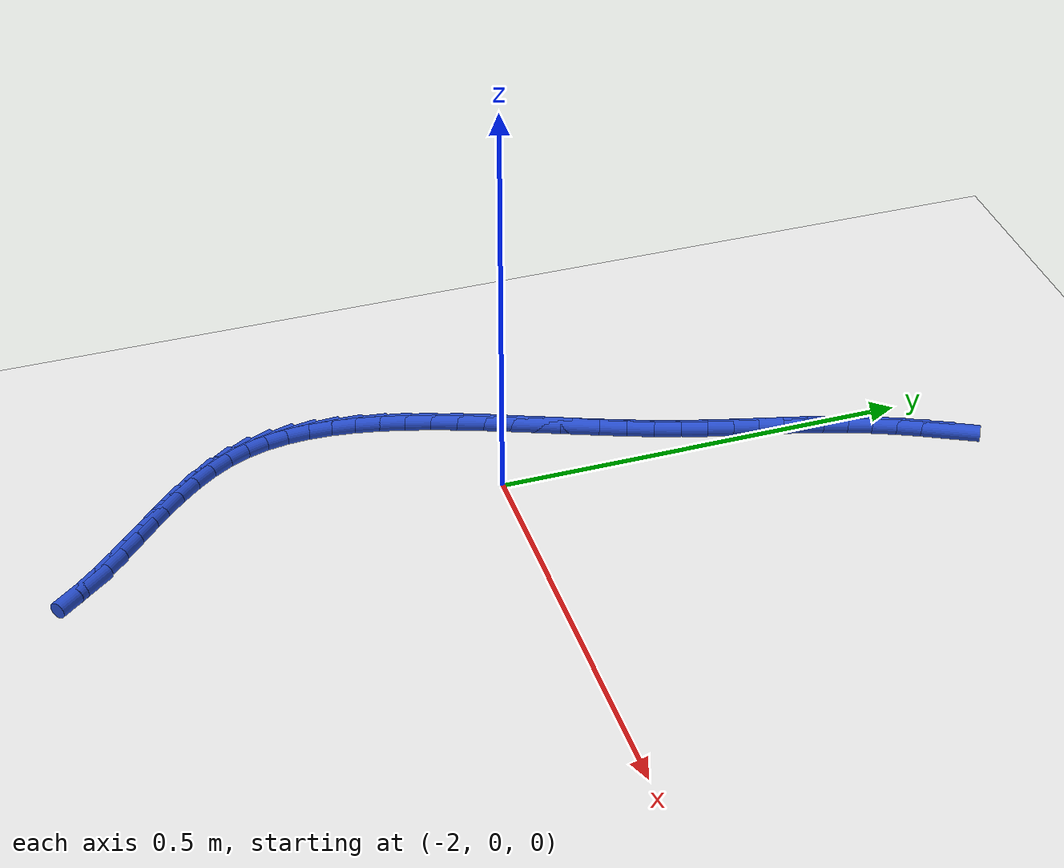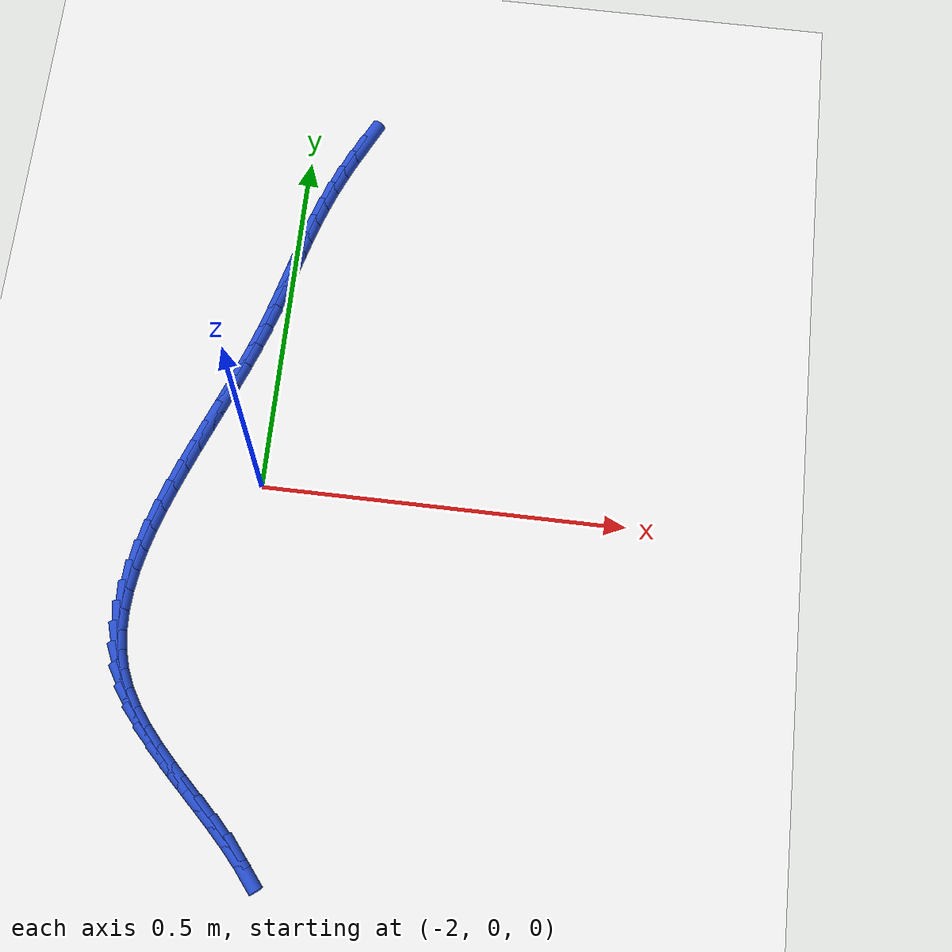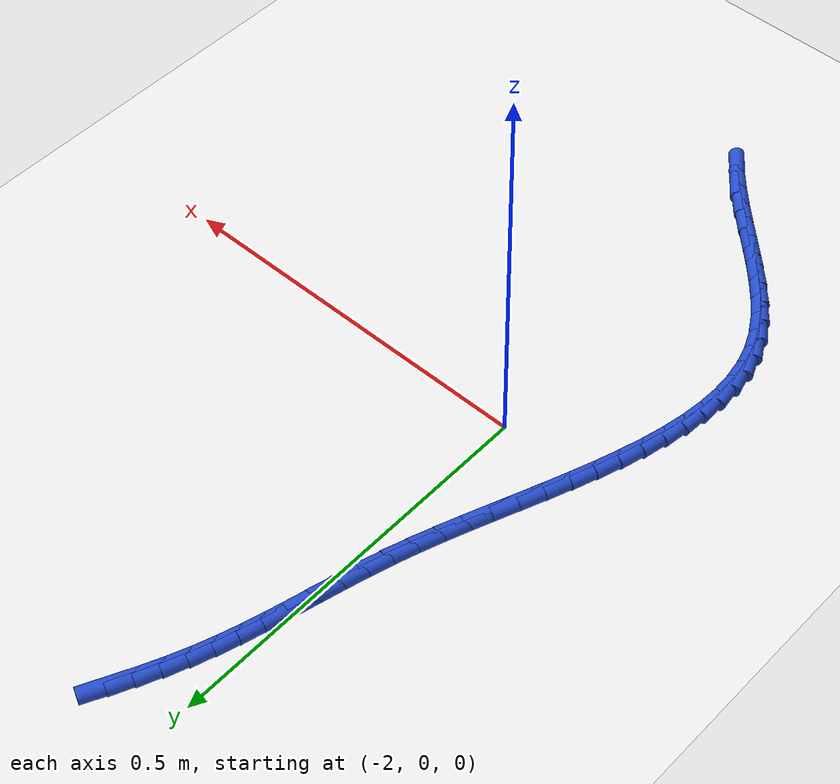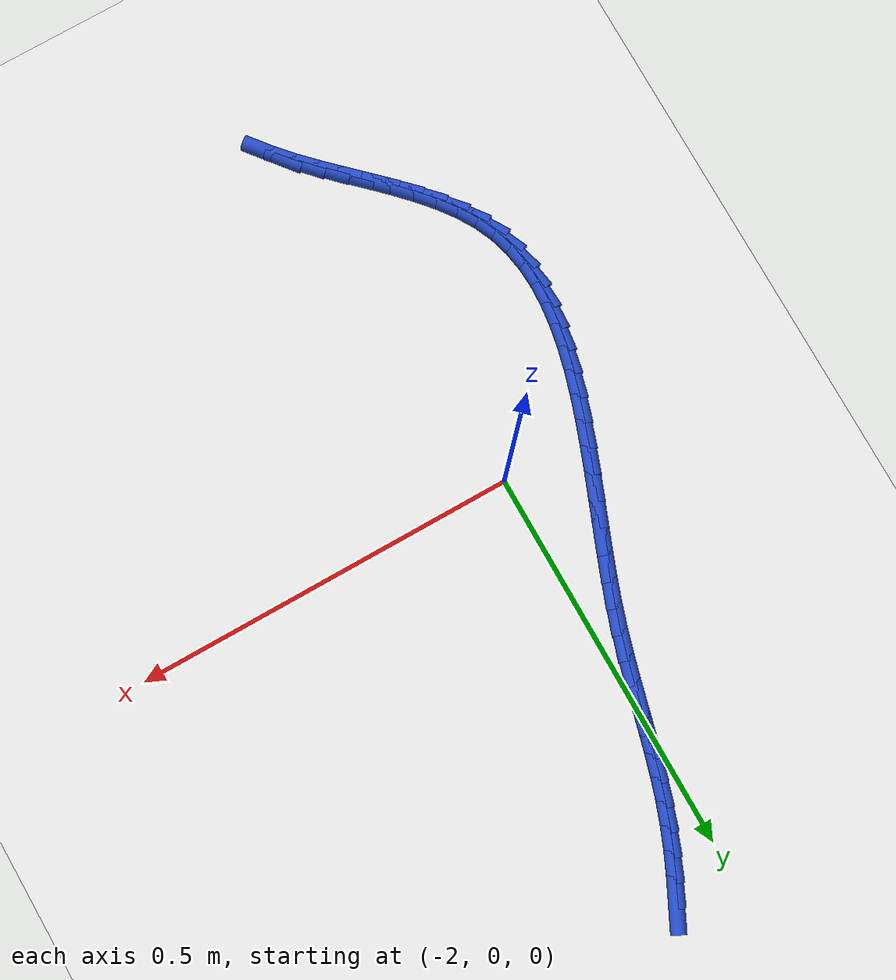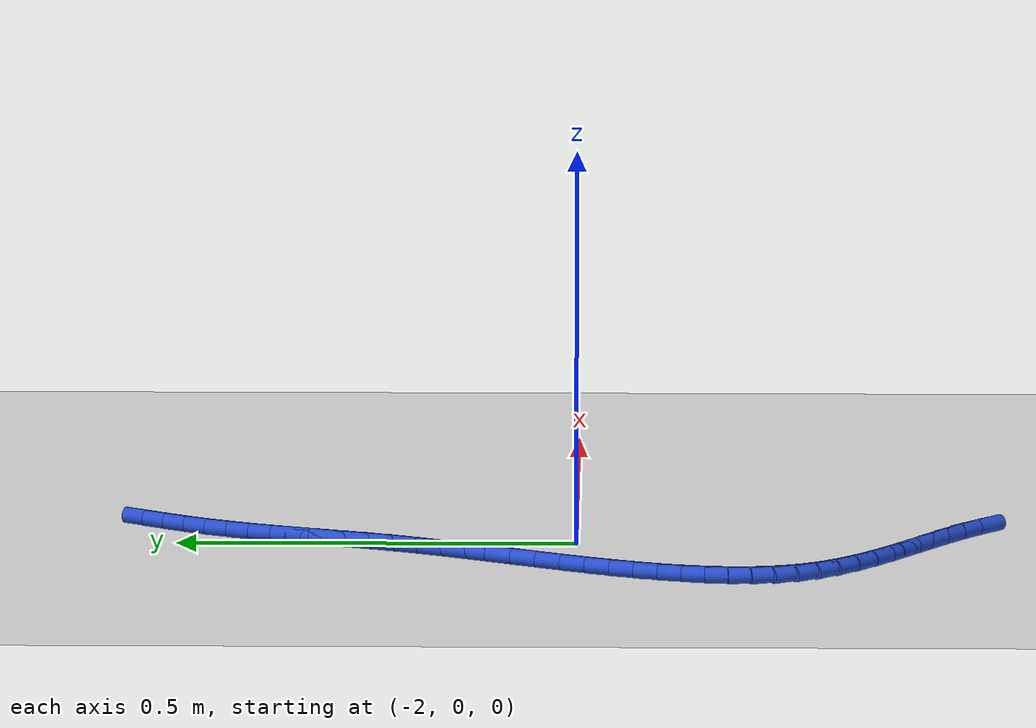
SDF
<sdf version="1.6">
 <world name="default">
  <model name="ground_plane">
   <static>1</static>
   <link name="link">
    <collision name="collision">
     <geometry><plane><normal>0 0 1</normal><size>100 100</size></plane></geometry>
     <surface><friction><ode><mu>100</mu><mu2>50</mu2></ode></friction></surface>
    </collision>
    <visual name="visual">
     <cast_shadows>0</cast_shadows>
     <geometry><plane><normal>0 0 1</normal><size>100 100</size></plane></geometry>
     <material>
      <script><uri>file://media/materials/scripts/gazebo.material</uri><name>Gazebo/WhiteGlow</name></script>
     </material>
    </visual>
   </link>
  </model>
  <model name="line">
   <link name="link_95">
    <pose>-1.9264585725661432 0.5358245085037695 0.01 0 1.57 1.1097923839732724</pose>
    <collision name="collision">
     <geometry><cylinder><radius>0.01</radius><length>0.08</length></cylinder></geometry>
    </collision>
    <visual name="visual">
     <material>
      <script><name>Gazebo/Blue</name><uri>file://media/materials/scripts/gazebo.material</uri></script>
     </material>
     <geometry><cylinder><radius>0.01</radius><length>0.08</length></cylinder></geometry>
    </visual>
   </link>
   <link name="link_96">
    <pose>-1.9397748339009064 0.5090150310546474 0.01 0 1.57 1.1432588997911424</pose>
    <collision name="collision">
     <geometry><cylinder><radius>0.01</radius><length>0.08</length></cylinder></geometry>
    </collision>
    <visual name="visual">
     <material>
      <script><name>Gazebo/Blue</name><uri>file://media/materials/scripts/gazebo.material</uri></script>
     </material>
     <geometry><cylinder><radius>0.01</radius><length>0.08</length></cylinder></geometry>
    </visual>
   </link>
   <link name="link_97">
    <pose>-1.9521064032205446 0.48195097777979706 0.01 0 1.57 1.1797853155643971</pose>
    <collision name="collision">
     <geometry><cylinder><radius>0.01</radius><length>0.08</length></cylinder></geometry>
    </collision>
    <visual name="visual">
     <material>
      <script><name>Gazebo/Blue</name><uri>file://media/materials/scripts/gazebo.material</uri></script>
     </material>
     <geometry><cylinder><radius>0.01</radius><length>0.08</length></cylinder></geometry>
    </visual>
   </link>
   <link name="link_98">
    <pose>-1.9633698662307446 0.45462820878678806 0.01 0 1.57 1.2194063952670964</pose>
    <collision name="collision">
     <geometry><cylinder><radius>0.01</radius><length>0.08</length></cylinder></geometry>
    </collision>
    <visual name="visual">
     <material>
      <script><name>Gazebo/Blue</name><uri>file://media/materials/scripts/gazebo.material</uri></script>
     </material>
     <geometry><cylinder><radius>0.01</radius><length>0.08</length></cylinder></geometry>
    </visual>
   </link>
   <link name="link_99">
    <pose>-1.9734828875390578 0.4270425592559199 0.01 0 1.57 1.258067836193791</pose>
    <collision name="collision">
     <geometry><cylinder><radius>0.01</radius><length>0.08</length></cylinder></geometry>
    </collision>
    <visual name="visual">
     <material>
      <script><name>Gazebo/Blue</name><uri>file://media/materials/scripts/gazebo.material</uri></script>
     </material>
     <geometry><cylinder><radius>0.01</radius><length>0.08</length></cylinder></geometry>
    </visual>
   </link>
   <link name="link_100">
    <pose>-1.9824896844496198 0.3991869404563042 0.01 0 1.57 1.2876099407139991</pose>
    <collision name="collision">
     <geometry><cylinder><radius>0.01</radius><length>0.08</length></cylinder></geometry>
    </collision>
    <visual name="visual">
     <material>
      <script><name>Gazebo/Blue</name><uri>file://media/materials/scripts/gazebo.material</uri></script>
     </material>
     <geometry><cylinder><radius>0.01</radius><length>0.08</length></cylinder></geometry>
    </visual>
   </link>
   <link name="link_101">
    <pose>-1.9906781387846422 0.37104863395946314 0.01 0 1.57 1.3068085031165297</pose>
    <collision name="collision">
     <geometry><cylinder><radius>0.01</radius><length>0.08</length></cylinder></geometry>
    </collision>
    <visual name="visual">
     <material>
      <script><name>Gazebo/Blue</name><uri>file://media/materials/scripts/gazebo.material</uri></script>
     </material>
     <geometry><cylinder><radius>0.01</radius><length>0.08</length></cylinder></geometry>
    </visual>
   </link>
   <link name="link_102">
    <pose>-1.9983638342923518 0.34261428130337146 0.01 0 1.57 1.3156090838781567</pose>
    <collision name="collision">
     <geometry><cylinder><radius>0.01</radius><length>0.08</length></cylinder></geometry>
    </collision>
    <visual name="visual">
     <material>
      <script><name>Gazebo/Blue</name><uri>file://media/materials/scripts/gazebo.material</uri></script>
     </material>
     <geometry><cylinder><radius>0.01</radius><length>0.08</length></cylinder></geometry>
    </visual>
   </link>
   <link name="link_103">
    <pose>-2.005862354720979 0.3138705240260032 0.01 0 1.57 1.3141856028820014</pose>
    <collision name="collision">
     <geometry><cylinder><radius>0.01</radius><length>0.08</length></cylinder></geometry>
    </collision>
    <visual name="visual">
     <material>
      <script><name>Gazebo/Blue</name><uri>file://media/materials/scripts/gazebo.material</uri></script>
     </material>
     <geometry><cylinder><radius>0.01</radius><length>0.08</length></cylinder></geometry>
    </visual>
   </link>
   <link name="link_104">
    <pose>-2.013489283818752 0.28480400366533337 0.01 0 1.57 1.3028983006932744</pose>
    <collision name="collision">
     <geometry><cylinder><radius>0.01</radius><length>0.08</length></cylinder></geometry>
    </collision>
    <visual name="visual">
     <material>
      <script><name>Gazebo/Blue</name><uri>file://media/materials/scripts/gazebo.material</uri></script>
     </material>
     <geometry><cylinder><radius>0.01</radius><length>0.08</length></cylinder></geometry>
    </visual>
   </link>
   <link name="link_105">
    <pose>-2.0215602053339006 0.25540136175933575 0.01 0 1.57 1.2822757942679142</pose>
    <collision name="collision">
     <geometry><cylinder><radius>0.01</radius><length>0.08</length></cylinder></geometry>
    </collision>
    <visual name="visual">
     <material>
      <script><name>Gazebo/Blue</name><uri>file://media/materials/scripts/gazebo.material</uri></script>
     </material>
     <geometry><cylinder><radius>0.01</radius><length>0.08</length></cylinder></geometry>
    </visual>
   </link>
   <link name="link_106">
    <pose>-2.0303907030146515 0.22564923984598526 0.01 0 1.57 1.2536320740986076</pose>
    <collision name="collision">
     <geometry><cylinder><radius>0.01</radius><length>0.08</length></cylinder></geometry>
    </collision>
    <visual name="visual">
     <material>
      <script><name>Gazebo/Blue</name><uri>file://media/materials/scripts/gazebo.material</uri></script>
     </material>
     <geometry><cylinder><radius>0.01</radius><length>0.08</length></cylinder></geometry>
    </visual>
   </link>
   <link name="link_107">
    <pose>-2.0402746876266886 0.19553764933546988 0.01 0 1.57 1.2265916299990405</pose>
    <collision name="collision">
     <geometry><cylinder><radius>0.01</radius><length>0.08</length></cylinder></geometry>
    </collision>
    <visual name="visual">
     <material>
      <script><name>Gazebo/Blue</name><uri>file://media/materials/scripts/gazebo.material</uri></script>
     </material>
     <geometry><cylinder><radius>0.01</radius><length>0.08</length></cylinder></geometry>
    </visual>
   </link>
   <link name="link_108">
    <pose>-2.0511833888920648 0.16510677442247584 0.01 0 1.57 1.2075950107326288</pose>
    <collision name="collision">
     <geometry><cylinder><radius>0.01</radius><length>0.08</length></cylinder></geometry>
    </collision>
    <visual name="visual">
     <material>
      <script><name>Gazebo/Blue</name><uri>file://media/materials/scripts/gazebo.material</uri></script>
     </material>
     <geometry><cylinder><radius>0.01</radius><length>0.08</length></cylinder></geometry>
    </visual>
   </link>
   <link name="link_109">
    <pose>-2.0628404573952808 0.13443529469818197 0.01 0 1.57 1.1961809921834046</pose>
    <collision name="collision">
     <geometry><cylinder><radius>0.01</radius><length>0.08</length></cylinder></geometry>
    </collision>
    <visual name="visual">
     <material>
      <script><name>Gazebo/Blue</name><uri>file://media/materials/scripts/gazebo.material</uri></script>
     </material>
     <geometry><cylinder><radius>0.01</radius><length>0.08</length></cylinder></geometry>
    </visual>
   </link>
   <link name="link_110">
    <pose>-2.0749632223885035 0.10360287264027634 0.01 0 1.57 1.1919555916238058</pose>
    <collision name="collision">
     <geometry><cylinder><radius>0.01</radius><length>0.08</length></cylinder></geometry>
    </collision>
    <visual name="visual">
     <material>
      <script><name>Gazebo/Blue</name><uri>file://media/materials/scripts/gazebo.material</uri></script>
     </material>
     <geometry><cylinder><radius>0.01</radius><length>0.08</length></cylinder></geometry>
    </visual>
   </link>
   <link name="link_111">
    <pose>-2.0872690131238985 0.07268917072644872 0.01 0 1.57 1.1947589679520159</pose>
    <collision name="collision">
     <geometry><cylinder><radius>0.01</radius><length>0.08</length></cylinder></geometry>
    </collision>
    <visual name="visual">
     <material>
      <script><name>Gazebo/Blue</name><uri>file://media/materials/scripts/gazebo.material</uri></script>
     </material>
     <geometry><cylinder><radius>0.01</radius><length>0.08</length></cylinder></geometry>
    </visual>
   </link>
   <link name="link_112">
    <pose>-2.099475158853632 0.04177385143438713 0.01 0 1.57 1.2046585304836177</pose>
    <collision name="collision">
     <geometry><cylinder><radius>0.01</radius><length>0.08</length></cylinder></geometry>
    </collision>
    <visual name="visual">
     <material>
      <script><name>Gazebo/Blue</name><uri>file://media/materials/scripts/gazebo.material</uri></script>
     </material>
     <geometry><cylinder><radius>0.01</radius><length>0.08</length></cylinder></geometry>
    </visual>
   </link>
   <link name="link_113">
    <pose>-2.1112989888298688 0.010936577241781266 0.01 0 1.57 1.2219493981736727</pose>
    <collision name="collision">
     <geometry><cylinder><radius>0.01</radius><length>0.08</length></cylinder></geometry>
    </collision>
    <visual name="visual">
     <material>
      <script><name>Gazebo/Blue</name><uri>file://media/materials/scripts/gazebo.material</uri></script>
     </material>
     <geometry><cylinder><radius>0.01</radius><length>0.08</length></cylinder></geometry>
    </visual>
   </link>
   <link name="link_114">
    <pose>-2.1224578323047756 -0.019742989373680873 0.01 0 1.57 1.247161134997798</pose>
    <collision name="collision">
     <geometry><cylinder><radius>0.01</radius><length>0.08</length></cylinder></geometry>
    </collision>
    <visual name="visual">
     <material>
      <script><name>Gazebo/Blue</name><uri>file://media/materials/scripts/gazebo.material</uri></script>
     </material>
     <geometry><cylinder><radius>0.01</radius><length>0.08</length></cylinder></geometry>
    </visual>
   </link>
   <link name="link_115">
    <pose>-2.132669018530518 -0.05018518593430951 0.01 0 1.57 1.2810668913233694</pose>
    <collision name="collision">
     <geometry><cylinder><radius>0.01</radius><length>0.08</length></cylinder></geometry>
    </collision>
    <visual name="visual">
     <material>
      <script><name>Gazebo/Blue</name><uri>file://media/materials/scripts/gazebo.material</uri></script>
     </material>
     <geometry><cylinder><radius>0.01</radius><length>0.08</length></cylinder></geometry>
    </visual>
   </link>
   <link name="link_116">
    <pose>-2.1416498767592604 -0.08031034996241625 0.01 0 1.57 1.3246864174786368</pose>
    <collision name="collision">
     <geometry><cylinder><radius>0.01</radius><length>0.08</length></cylinder></geometry>
    </collision>
    <visual name="visual">
     <material>
      <script><name>Gazebo/Blue</name><uri>file://media/materials/scripts/gazebo.material</uri></script>
     </material>
     <geometry><cylinder><radius>0.01</radius><length>0.08</length></cylinder></geometry>
    </visual>
   </link>
   <link name="link_117">
    <pose>-2.1491177362431704 -0.11003881898031298 0.01 0 1.57 1.3792661999603433</pose>
    <collision name="collision">
     <geometry><cylinder><radius>0.01</radius><length>0.08</length></cylinder></geometry>
    </collision>
    <visual name="visual">
     <material>
      <script><name>Gazebo/Blue</name><uri>file://media/materials/scripts/gazebo.material</uri></script>
     </material>
     <geometry><cylinder><radius>0.01</radius><length>0.08</length></cylinder></geometry>
    </visual>
   </link>
   <link name="link_118">
    <pose>-2.1547899262344132 -0.13929093051030927 0.01 0 1.57 1.4462067043760853</pose>
    <collision name="collision">
     <geometry><cylinder><radius>0.01</radius><length>0.08</length></cylinder></geometry>
    </collision>
    <visual name="visual">
     <material>
      <script><name>Gazebo/Blue</name><uri>file://media/materials/scripts/gazebo.material</uri></script>
     </material>
     <geometry><cylinder><radius>0.01</radius><length>0.08</length></cylinder></geometry>
    </visual>
   </link>
   <link name="link_119">
    <pose>-2.1583837759851545 -0.16798702207471697 0.01 0 1.57 1.5268893963776622</pose>
    <collision name="collision">
     <geometry><cylinder><radius>0.01</radius><length>0.08</length></cylinder></geometry>
    </collision>
    <visual name="visual">
     <material>
      <script><name>Gazebo/Blue</name><uri>file://media/materials/scripts/gazebo.material</uri></script>
     </material>
     <geometry><cylinder><radius>0.01</radius><length>0.08</length></cylinder></geometry>
    </visual>
   </link>
   <link name="link_120">
    <pose>-2.1596166147475593 -0.1960474311958473 0.01 0 1.57 -1.5192479707244286</pose>
    <collision name="collision">
     <geometry><cylinder><radius>0.01</radius><length>0.08</length></cylinder></geometry>
    </collision>
    <visual name="visual">
     <material>
      <script><name>Gazebo/Blue</name><uri>file://media/materials/scripts/gazebo.material</uri></script>
     </material>
     <geometry><cylinder><radius>0.01</radius><length>0.08</length></cylinder></geometry>
    </visual>
   </link>
   <link name="link_121">
    <pose>-2.1582057717737944 -0.2233924953960114 0.01 0 1.57 -1.4088674621820503</pose>
    <collision name="collision">
     <geometry><cylinder><radius>0.01</radius><length>0.08</length></cylinder></geometry>
    </collision>
    <visual name="visual">
     <material>
      <script><name>Gazebo/Blue</name><uri>file://media/materials/scripts/gazebo.material</uri></script>
     </material>
     <geometry><cylinder><radius>0.01</radius><length>0.08</length></cylinder></geometry>
    </visual>
   </link>
   <link name="link_122">
    <pose>-2.1538685763160252 -0.24994255219752093 0.01 0 1.57 -1.2849372394934582</pose>
    <collision name="collision">
     <geometry><cylinder><radius>0.01</radius><length>0.08</length></cylinder></geometry>
    </collision>
    <visual name="visual">
     <material>
      <script><name>Gazebo/Blue</name><uri>file://media/materials/scripts/gazebo.material</uri></script>
     </material>
     <geometry><cylinder><radius>0.01</radius><length>0.08</length></cylinder></geometry>
    </visual>
   </link>
   <link name="link_123">
    <pose>-2.1463223576264174 -0.27561793912268584 0.01 0 1.57 -1.1512333430492385</pose>
    <collision name="collision">
     <geometry><cylinder><radius>0.01</radius><length>0.08</length></cylinder></geometry>
    </collision>
    <visual name="visual">
     <material>
      <script><name>Gazebo/Blue</name><uri>file://media/materials/scripts/gazebo.material</uri></script>
     </material>
     <geometry><cylinder><radius>0.01</radius><length>0.08</length></cylinder></geometry>
    </visual>
   </link>
   <link name="link_124">
    <pose>-2.135294299936073 -0.3003418384279515 0.01 0 1.57 -1.026259693451715</pose>
    <collision name="collision">
     <geometry><cylinder><radius>0.01</radius><length>0.08</length></cylinder></geometry>
    </collision>
    <visual name="visual">
     <material>
      <script><name>Gazebo/Blue</name><uri>file://media/materials/scripts/gazebo.material</uri></script>
     </material>
     <geometry><cylinder><radius>0.01</radius><length>0.08</length></cylinder></geometry>
    </visual>
   </link>
   <link name="link_125">
    <pose>-2.1208796008446793 -0.32414366295615715 0.01 0 1.57 -0.9285984750349181</pose>
    <collision name="collision">
     <geometry><cylinder><radius>0.01</radius><length>0.08</length></cylinder></geometry>
    </collision>
    <visual name="visual">
     <material>
      <script><name>Gazebo/Blue</name><uri>file://media/materials/scripts/gazebo.material</uri></script>
     </material>
     <geometry><cylinder><radius>0.01</radius><length>0.08</length></cylinder></geometry>
    </visual>
   </link>
   <link name="link_126">
    <pose>-2.103642964279634 -0.3471883530520379 0.01 0 1.57 -0.8567852057747298</pose>
    <collision name="collision">
     <geometry><cylinder><radius>0.01</radius><length>0.08</length></cylinder></geometry>
    </collision>
    <visual name="visual">
     <material>
      <script><name>Gazebo/Blue</name><uri>file://media/materials/scripts/gazebo.material</uri></script>
     </material>
     <geometry><cylinder><radius>0.01</radius><length>0.08</length></cylinder></geometry>
    </visual>
   </link>
   <link name="link_127">
    <pose>-2.0841796259657057 -0.36964966235629737 0.01 0 1.57 -0.8075719500271227</pose>
    <collision name="collision">
     <geometry><cylinder><radius>0.01</radius><length>0.08</length></cylinder></geometry>
    </collision>
    <visual name="visual">
     <material>
      <script><name>Gazebo/Blue</name><uri>file://media/materials/scripts/gazebo.material</uri></script>
     </material>
     <geometry><cylinder><radius>0.01</radius><length>0.08</length></cylinder></geometry>
    </visual>
   </link>
   <link name="link_128">
    <pose>-2.063084821627662 -0.3917013445096405 0.01 0 1.57 -0.778225393643579</pose>
    <collision name="collision">
     <geometry><cylinder><radius>0.01</radius><length>0.08</length></cylinder></geometry>
    </collision>
    <visual name="visual">
     <material>
      <script><name>Gazebo/Blue</name><uri>file://media/materials/scripts/gazebo.material</uri></script>
     </material>
     <geometry><cylinder><radius>0.01</radius><length>0.08</length></cylinder></geometry>
    </visual>
   </link>
   <link name="link_129">
    <pose>-2.04095378699027 -0.41351715315277193 0.01 0 1.57 -0.7669382823421232</pose>
    <collision name="collision">
     <geometry><cylinder><radius>0.01</radius><length>0.08</length></cylinder></geometry>
    </collision>
    <visual name="visual">
     <material>
      <script><name>Gazebo/Blue</name><uri>file://media/materials/scripts/gazebo.material</uri></script>
     </material>
     <geometry><cylinder><radius>0.01</radius><length>0.08</length></cylinder></geometry>
    </visual>
   </link>
   <link name="link_130">
    <pose>-2.0183817577782985 -0.43527084192639653 0.01 0 1.57 -0.7729230493119708</pose>
    <collision name="collision">
     <geometry><cylinder><radius>0.01</radius><length>0.08</length></cylinder></geometry>
    </collision>
    <visual name="visual">
     <material>
      <script><name>Gazebo/Blue</name><uri>file://media/materials/scripts/gazebo.material</uri></script>
     </material>
     <geometry><cylinder><radius>0.01</radius><length>0.08</length></cylinder></geometry>
    </visual>
   </link>
   <link name="link_131">
    <pose>-1.9959639697165135 -0.457136164471219 0.01 0 1.57 -0.7964066083720689</pose>
    <collision name="collision">
     <geometry><cylinder><radius>0.01</radius><length>0.08</length></cylinder></geometry>
    </collision>
    <visual name="visual">
     <material>
      <script><name>Gazebo/Blue</name><uri>file://media/materials/scripts/gazebo.material</uri></script>
     </material>
     <geometry><cylinder><radius>0.01</radius><length>0.08</length></cylinder></geometry>
    </visual>
   </link>
   <link name="link_132">
    <pose>-1.974295658529684 -0.47928687442794315 0.01 0 1.57 -0.8385989913867242</pose>
    <collision name="collision">
     <geometry><cylinder><radius>0.01</radius><length>0.08</length></cylinder></geometry>
    </collision>
    <visual name="visual">
     <material>
      <script><name>Gazebo/Blue</name><uri>file://media/materials/scripts/gazebo.material</uri></script>
     </material>
     <geometry><cylinder><radius>0.01</radius><length>0.08</length></cylinder></geometry>
    </visual>
   </link>
   <link name="link_133">
    <pose>-1.9539720599425778 -0.5018967254372739 0.01 0 1.57 -0.8984010235277623</pose>
    <collision name="collision">
     <geometry><cylinder><radius>0.01</radius><length>0.08</length></cylinder></geometry>
    </collision>
    <visual name="visual">
     <material>
      <script><name>Gazebo/Blue</name><uri>file://media/materials/scripts/gazebo.material</uri></script>
     </material>
     <geometry><cylinder><radius>0.01</radius><length>0.08</length></cylinder></geometry>
    </visual>
   </link>
  </model>
 </world>
</sdf>
